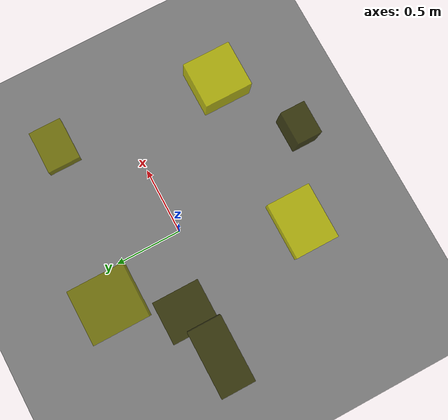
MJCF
<?xml version="1.0"?>
<mujoco model="obstacle_scene">
  <compiler angle="radian" coordinate="local"/>
  <option timestep="0.001" gravity="0 0 -9.81"/>

  <asset>
    <material name="obstacle_mat" rgba="0.8 0.8 0.0 0.8"/>
    <material name="ground_mat" rgba="0.5 0.5 0.5 1"/>
  </asset>

  <worldbody>
    <!-- Ground plane -->
    <geom name="ground" type="plane" size="3 3 0.1" material="ground_mat"/>

    <!-- Obstacles -->
    <body name="obstacle_0" pos="-0.507669 0.218523 0.510332">
      <geom name="obs_0" type="box" size="0.142212 0.156999 0.093080" rgba="0.2 0.2 0.0 0.8"/>
    </body>
    <body name="obstacle_1" pos="0.777636 0.463080 0.639148">
      <geom name="obs_1" type="box" size="0.140977 0.106621 0.040107" rgba="0.5 0.5 0.0 0.8"/>
    </body>
    <body name="obstacle_2" pos="0.776458 -0.703969 0.342939">
      <geom name="obs_2" type="box" size="0.165753 0.172515 0.102749" rgba="0.8 0.8 0.0 0.8"/>
    </body>
    <body name="obstacle_3" pos="-0.791215 0.156944 1.013437">
      <geom name="obs_3" type="box" size="0.194759 0.101927 0.068157" rgba="0.2 0.2 0.0 0.8"/>
    </body>
    <body name="obstacle_4" pos="-0.236221 0.634723 0.313717">
      <geom name="obs_4" type="box" size="0.191306 0.198931 0.129510" rgba="0.5 0.5 0.0 0.8"/>
    </body>
    <body name="obstacle_5" pos="-0.354731 -0.697671 0.510125">
      <geom name="obs_5" type="box" size="0.191333 0.149444 0.050731" rgba="0.8 0.8 0.0 0.8"/>
    </body>
    <body name="obstacle_6" pos="0.131752 -0.861749 0.934734">
      <geom name="obs_6" type="box" size="0.103178 0.076533 0.096131" rgba="0.2 0.2 0.0 0.8"/>
    </body>
  </worldbody>
</mujoco>
